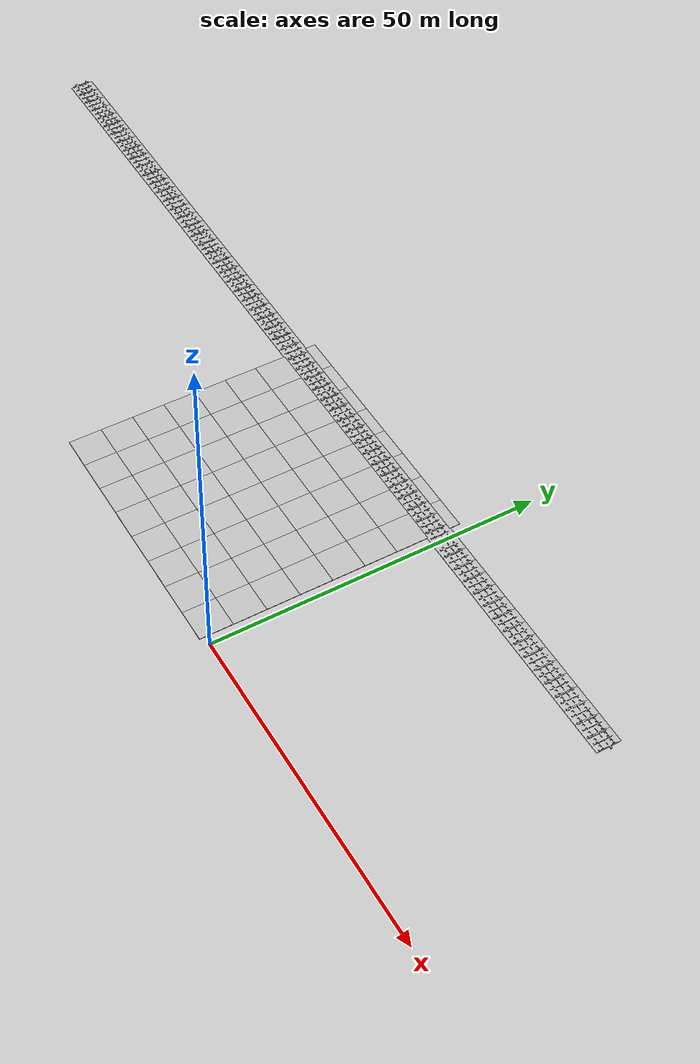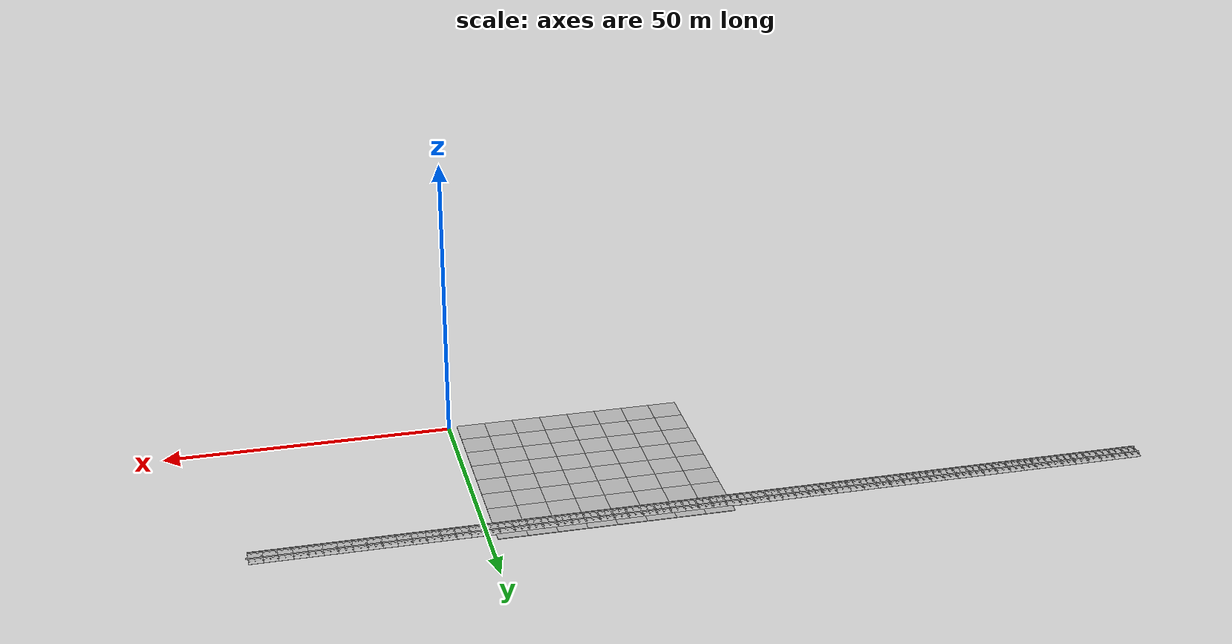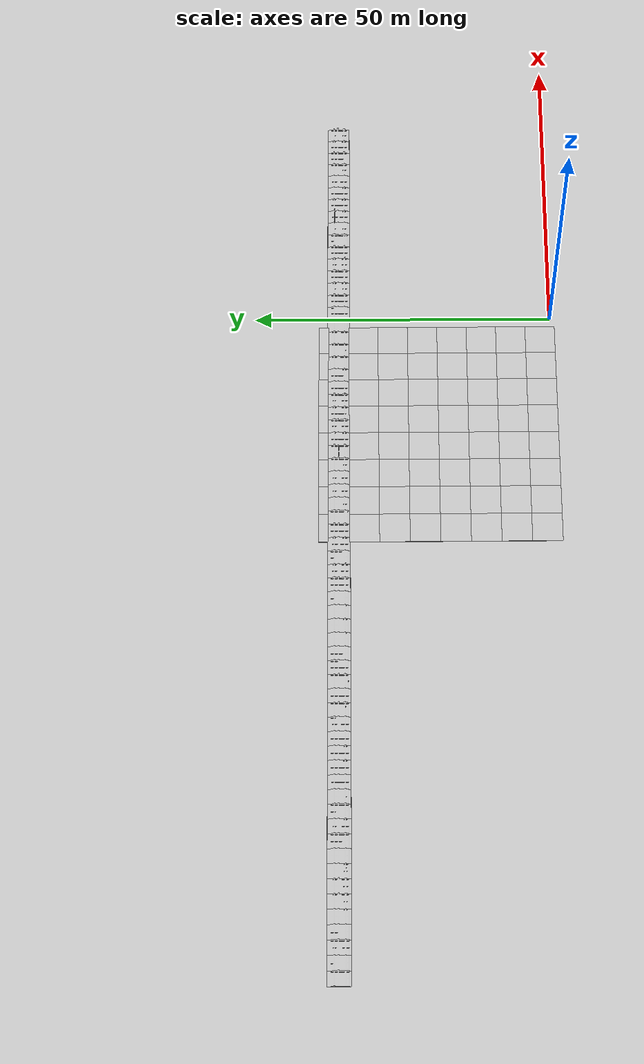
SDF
<sdf version="1.7">
 <world name="default">
  <model name="mud_plane_40x40_0">
   <model name="mud_plane_20x20">
    <model name="mud_plane">
     <static>1</static>
     <link name="link">
      <collision name="collision"><geometry><box><size>10 10 0.1</size></box></geometry></collision>
      <visual name="visual_1">
       <pose>-2.5 2.5 -0.05 0 -0 0</pose>
       <cast_shadows>0</cast_shadows>
       <geometry><box><size>5 5 0.1</size></box></geometry>
       <material>
        <script>
         <uri>model://mud_plane/materials/scripts</uri>
         <uri>model://mud_plane/materials/textures</uri>
         <name>vrc/mud</name>
        </script>
       </material>
      </visual>
      <visual name="visual_2">
       <pose>2.5 2.5 -0.05 0 -0 0</pose>
       <cast_shadows>0</cast_shadows>
       <geometry><box><size>5 5 0.1</size></box></geometry>
       <material>
        <script>
         <uri>model://mud_plane/materials/scripts</uri>
         <uri>model://mud_plane/materials/textures</uri>
         <name>vrc/mud</name>
        </script>
       </material>
      </visual>
      <visual name="visual_3">
       <pose>2.5 -2.5 -0.05 0 -0 0</pose>
       <cast_shadows>0</cast_shadows>
       <geometry><box><size>5 5 0.1</size></box></geometry>
       <material>
        <script>
         <uri>model://mud_plane/materials/scripts</uri>
         <uri>model://mud_plane/materials/textures</uri>
         <name>vrc/mud</name>
        </script>
       </material>
      </visual>
      <visual name="visual_4">
       <pose>-2.5 -2.5 -0.05 0 -0 0</pose>
       <cast_shadows>0</cast_shadows>
       <geometry><box><size>5 5 0.1</size></box></geometry>
       <material>
        <script>
         <uri>model://mud_plane/materials/scripts</uri>
         <uri>model://mud_plane/materials/textures</uri>
         <name>vrc/mud</name>
        </script>
       </material>
      </visual>
     </link>
     <pose>-4.99986 -4.99991 0 0 -0 0</pose>
    </model>
    <model name="mud_plane_0">
     <static>1</static>
     <link name="link">
      <collision name="collision"><geometry><box><size>10 10 0.1</size></box></geometry></collision>
      <visual name="visual_1">
       <pose>-2.5 2.5 -0.05 0 -0 0</pose>
       <cast_shadows>0</cast_shadows>
       <geometry><box><size>5 5 0.1</size></box></geometry>
       <material>
        <script>
         <uri>model://mud_plane/materials/scripts</uri>
         <uri>model://mud_plane/materials/textures</uri>
         <name>vrc/mud</name>
        </script>
       </material>
      </visual>
      <visual name="visual_2">
       <pose>2.5 2.5 -0.05 0 -0 0</pose>
       <cast_shadows>0</cast_shadows>
       <geometry><box><size>5 5 0.1</size></box></geometry>
       <material>
        <script>
         <uri>model://mud_plane/materials/scripts</uri>
         <uri>model://mud_plane/materials/textures</uri>
         <name>vrc/mud</name>
        </script>
       </material>
      </visual>
      <visual name="visual_3">
       <pose>2.5 -2.5 -0.05 0 -0 0</pose>
       <cast_shadows>0</cast_shadows>
       <geometry><box><size>5 5 0.1</size></box></geometry>
       <material>
        <script>
         <uri>model://mud_plane/materials/scripts</uri>
         <uri>model://mud_plane/materials/textures</uri>
         <name>vrc/mud</name>
        </script>
       </material>
      </visual>
      <visual name="visual_4">
       <pose>-2.5 -2.5 -0.05 0 -0 0</pose>
       <cast_shadows>0</cast_shadows>
       <geometry><box><size>5 5 0.1</size></box></geometry>
       <material>
        <script>
         <uri>model://mud_plane/materials/scripts</uri>
         <uri>model://mud_plane/materials/textures</uri>
         <name>vrc/mud</name>
        </script>
       </material>
      </visual>
     </link>
     <pose>-4.99946 4.99954 0 0 -0 0</pose>
    </model>
    <model name="mud_plane_1">
     <static>1</static>
     <link name="link">
      <collision name="collision"><geometry><box><size>10 10 0.1</size></box></geometry></collision>
      <visual name="visual_1">
       <pose>-2.5 2.5 -0.05 0 -0 0</pose>
       <cast_shadows>0</cast_shadows>
       <geometry><box><size>5 5 0.1</size></box></geometry>
       <material>
        <script>
         <uri>model://mud_plane/materials/scripts</uri>
         <uri>model://mud_plane/materials/textures</uri>
         <name>vrc/mud</name>
        </script>
       </material>
      </visual>
      <visual name="visual_2">
       <pose>2.5 2.5 -0.05 0 -0 0</pose>
       <cast_shadows>0</cast_shadows>
       <geometry><box><size>5 5 0.1</size></box></geometry>
       <material>
        <script>
         <uri>model://mud_plane/materials/scripts</uri>
         <uri>model://mud_plane/materials/textures</uri>
         <name>vrc/mud</name>
        </script>
       </material>
      </visual>
      <visual name="visual_3">
       <pose>2.5 -2.5 -0.05 0 -0 0</pose>
       <cast_shadows>0</cast_shadows>
       <geometry><box><size>5 5 0.1</size></box></geometry>
       <material>
        <script>
         <uri>model://mud_plane/materials/scripts</uri>
         <uri>model://mud_plane/materials/textures</uri>
         <name>vrc/mud</name>
        </script>
       </material>
      </visual>
      <visual name="visual_4">
       <pose>-2.5 -2.5 -0.05 0 -0 0</pose>
       <cast_shadows>0</cast_shadows>
       <geometry><box><size>5 5 0.1</size></box></geometry>
       <material>
        <script>
         <uri>model://mud_plane/materials/scripts</uri>
         <uri>model://mud_plane/materials/textures</uri>
         <name>vrc/mud</name>
        </script>
       </material>
      </visual>
     </link>
     <pose>4.99964 -4.99949 0 0 -0 0</pose>
    </model>
    <model name="mud_plane_2">
     <static>1</static>
     <link name="link">
      <collision name="collision"><geometry><box><size>10 10 0.1</size></box></geometry></collision>
      <visual name="visual_1">
       <pose>-2.5 2.5 -0.05 0 -0 0</pose>
       <cast_shadows>0</cast_shadows>
       <geometry><box><size>5 5 0.1</size></box></geometry>
       <material>
        <script>
         <uri>model://mud_plane/materials/scripts</uri>
         <uri>model://mud_plane/materials/textures</uri>
         <name>vrc/mud</name>
        </script>
       </material>
      </visual>
      <visual name="visual_2">
       <pose>2.5 2.5 -0.05 0 -0 0</pose>
       <cast_shadows>0</cast_shadows>
       <geometry><box><size>5 5 0.1</size></box></geometry>
       <material>
        <script>
         <uri>model://mud_plane/materials/scripts</uri>
         <uri>model://mud_plane/materials/textures</uri>
         <name>vrc/mud</name>
        </script>
       </material>
      </visual>
      <visual name="visual_3">
       <pose>2.5 -2.5 -0.05 0 -0 0</pose>
       <cast_shadows>0</cast_shadows>
       <geometry><box><size>5 5 0.1</size></box></geometry>
       <material>
        <script>
         <uri>model://mud_plane/materials/scripts</uri>
         <uri>model://mud_plane/materials/textures</uri>
         <name>vrc/mud</name>
        </script>
       </material>
      </visual>
      <visual name="visual_4">
       <pose>-2.5 -2.5 -0.05 0 -0 0</pose>
       <cast_shadows>0</cast_shadows>
       <geometry><box><size>5 5 0.1</size></box></geometry>
       <material>
        <script>
         <uri>model://mud_plane/materials/scripts</uri>
         <uri>model://mud_plane/materials/textures</uri>
         <name>vrc/mud</name>
        </script>
       </material>
      </visual>
     </link>
     <pose>4.99967 4.99986 0 0 -0 0</pose>
    </model>
    <static>0</static>
    <pose>-9.99895 9.99843 0 0 -0 0</pose>
   </model>
   <model name="mud_plane_20x20_0">
    <model name="mud_plane">
     <static>1</static>
     <link name="link">
      <collision name="collision"><geometry><box><size>10 10 0.1</size></box></geometry></collision>
      <visual name="visual_1">
       <pose>-2.5 2.5 -0.05 0 -0 0</pose>
       <cast_shadows>0</cast_shadows>
       <geometry><box><size>5 5 0.1</size></box></geometry>
       <material>
        <script>
         <uri>model://mud_plane/materials/scripts</uri>
         <uri>model://mud_plane/materials/textures</uri>
         <name>vrc/mud</name>
        </script>
       </material>
      </visual>
      <visual name="visual_2">
       <pose>2.5 2.5 -0.05 0 -0 0</pose>
       <cast_shadows>0</cast_shadows>
       <geometry><box><size>5 5 0.1</size></box></geometry>
       <material>
        <script>
         <uri>model://mud_plane/materials/scripts</uri>
         <uri>model://mud_plane/materials/textures</uri>
         <name>vrc/mud</name>
        </script>
       </material>
      </visual>
      <visual name="visual_3">
       <pose>2.5 -2.5 -0.05 0 -0 0</pose>
       <cast_shadows>0</cast_shadows>
       <geometry><box><size>5 5 0.1</size></box></geometry>
       <material>
        <script>
         <uri>model://mud_plane/materials/scripts</uri>
         <uri>model://mud_plane/materials/textures</uri>
         <name>vrc/mud</name>
        </script>
       </material>
      </visual>
      <visual name="visual_4">
       <pose>-2.5 -2.5 -0.05 0 -0 0</pose>
       <cast_shadows>0</cast_shadows>
       <geometry><box><size>5 5 0.1</size></box></geometry>
       <material>
        <script>
         <uri>model://mud_plane/materials/scripts</uri>
         <uri>model://mud_plane/materials/textures</uri>
         <name>vrc/mud</name>
        </script>
       </material>
      </visual>
     </link>
     <pose>-4.99986 -4.99991 0 0 -0 0</pose>
    </model>
    <model name="mud_plane_0">
     <static>1</static>
     <link name="link">
      <collision name="collision"><geometry><box><size>10 10 0.1</size></box></geometry></collision>
      <visual name="visual_1">
       <pose>-2.5 2.5 -0.05 0 -0 0</pose>
       <cast_shadows>0</cast_shadows>
       <geometry><box><size>5 5 0.1</size></box></geometry>
       <material>
        <script>
         <uri>model://mud_plane/materials/scripts</uri>
         <uri>model://mud_plane/materials/textures</uri>
         <name>vrc/mud</name>
        </script>
       </material>
      </visual>
      <visual name="visual_2">
       <pose>2.5 2.5 -0.05 0 -0 0</pose>
       <cast_shadows>0</cast_shadows>
       <geometry><box><size>5 5 0.1</size></box></geometry>
       <material>
        <script>
         <uri>model://mud_plane/materials/scripts</uri>
         <uri>model://mud_plane/materials/textures</uri>
         <name>vrc/mud</name>
        </script>
       </material>
      </visual>
      <visual name="visual_3">
       <pose>2.5 -2.5 -0.05 0 -0 0</pose>
       <cast_shadows>0</cast_shadows>
       <geometry><box><size>5 5 0.1</size></box></geometry>
       <material>
        <script>
         <uri>model://mud_plane/materials/scripts</uri>
         <uri>model://mud_plane/materials/textures</uri>
         <name>vrc/mud</name>
        </script>
       </material>
      </visual>
      <visual name="visual_4">
       <pose>-2.5 -2.5 -0.05 0 -0 0</pose>
       <cast_shadows>0</cast_shadows>
       <geometry><box><size>5 5 0.1</size></box></geometry>
       <material>
        <script>
         <uri>model://mud_plane/materials/scripts</uri>
         <uri>model://mud_plane/materials/textures</uri>
         <name>vrc/mud</name>
        </script>
       </material>
      </visual>
     </link>
     <pose>-4.99946 4.99954 0 0 -0 0</pose>
    </model>
    <model name="mud_plane_1">
     <static>1</static>
     <link name="link">
      <collision name="collision"><geometry><box><size>10 10 0.1</size></box></geometry></collision>
      <visual name="visual_1">
       <pose>-2.5 2.5 -0.05 0 -0 0</pose>
       <cast_shadows>0</cast_shadows>
       <geometry><box><size>5 5 0.1</size></box></geometry>
       <material>
        <script>
         <uri>model://mud_plane/materials/scripts</uri>
         <uri>model://mud_plane/materials/textures</uri>
         <name>vrc/mud</name>
        </script>
       </material>
      </visual>
      <visual name="visual_2">
       <pose>2.5 2.5 -0.05 0 -0 0</pose>
       <cast_shadows>0</cast_shadows>
       <geometry><box><size>5 5 0.1</size></box></geometry>
       <material>
        <script>
         <uri>model://mud_plane/materials/scripts</uri>
         <uri>model://mud_plane/materials/textures</uri>
         <name>vrc/mud</name>
        </script>
       </material>
      </visual>
      <visual name="visual_3">
       <pose>2.5 -2.5 -0.05 0 -0 0</pose>
       <cast_shadows>0</cast_shadows>
       <geometry><box><size>5 5 0.1</size></box></geometry>
       <material>
        <script>
         <uri>model://mud_plane/materials/scripts</uri>
         <uri>model://mud_plane/materials/textures</uri>
         <name>vrc/mud</name>
        </script>
       </material>
      </visual>
      <visual name="visual_4">
       <pose>-2.5 -2.5 -0.05 0 -0 0</pose>
       <cast_shadows>0</cast_shadows>
       <geometry><box><size>5 5 0.1</size></box></geometry>
       <material>
        <script>
         <uri>model://mud_plane/materials/scripts</uri>
         <uri>model://mud_plane/materials/textures</uri>
         <name>vrc/mud</name>
        </script>
       </material>
      </visual>
     </link>
     <pose>4.99964 -4.99949 0 0 -0 0</pose>
    </model>
    <model name="mud_plane_2">
     <static>1</static>
     <link name="link">
      <collision name="collision"><geometry><box><size>10 10 0.1</size></box></geometry></collision>
      <visual name="visual_1">
       <pose>-2.5 2.5 -0.05 0 -0 0</pose>
       <cast_shadows>0</cast_shadows>
       <geometry><box><size>5 5 0.1</size></box></geometry>
       <material>
        <script>
         <uri>model://mud_plane/materials/scripts</uri>
         <uri>model://mud_plane/materials/textures</uri>
         <name>vrc/mud</name>
        </script>
       </material>
      </visual>
      <visual name="visual_2">
       <pose>2.5 2.5 -0.05 0 -0 0</pose>
       <cast_shadows>0</cast_shadows>
       <geometry><box><size>5 5 0.1</size></box></geometry>
       <material>
        <script>
         <uri>model://mud_plane/materials/scripts</uri>
         <uri>model://mud_plane/materials/textures</uri>
         <name>vrc/mud</name>
        </script>
       </material>
      </visual>
      <visual name="visual_3">
       <pose>2.5 -2.5 -0.05 0 -0 0</pose>
       <cast_shadows>0</cast_shadows>
       <geometry><box><size>5 5 0.1</size></box></geometry>
       <material>
        <script>
         <uri>model://mud_plane/materials/scripts</uri>
         <uri>model://mud_plane/materials/textures</uri>
         <name>vrc/mud</name>
        </script>
       </material>
      </visual>
      <visual name="visual_4">
       <pose>-2.5 -2.5 -0.05 0 -0 0</pose>
       <cast_shadows>0</cast_shadows>
       <geometry><box><size>5 5 0.1</size></box></geometry>
       <material>
        <script>
         <uri>model://mud_plane/materials/scripts</uri>
         <uri>model://mud_plane/materials/textures</uri>
         <name>vrc/mud</name>
        </script>
       </material>
      </visual>
     </link>
     <pose>4.99967 4.99986 0 0 -0 0</pose>
    </model>
    <static>0</static>
    <pose>9.99933 9.9997 0 0 -0 0</pose>
   </model>
   <model name="mud_plane_20x20_1">
    <model name="mud_plane">
     <static>1</static>
     <link name="link">
      <collision name="collision"><geometry><box><size>10 10 0.1</size></box></geometry></collision>
      <visual name="visual_1">
       <pose>-2.5 2.5 -0.05 0 -0 0</pose>
       <cast_shadows>0</cast_shadows>
       <geometry><box><size>5 5 0.1</size></box></geometry>
       <material>
        <script>
         <uri>model://mud_plane/materials/scripts</uri>
         <uri>model://mud_plane/materials/textures</uri>
         <name>vrc/mud</name>
        </script>
       </material>
      </visual>
      <visual name="visual_2">
       <pose>2.5 2.5 -0.05 0 -0 0</pose>
       <cast_shadows>0</cast_shadows>
       <geometry><box><size>5 5 0.1</size></box></geometry>
       <material>
        <script>
         <uri>model://mud_plane/materials/scripts</uri>
         <uri>model://mud_plane/materials/textures</uri>
         <name>vrc/mud</name>
        </script>
       </material>
      </visual>
      <visual name="visual_3">
       <pose>2.5 -2.5 -0.05 0 -0 0</pose>
       <cast_shadows>0</cast_shadows>
       <geometry><box><size>5 5 0.1</size></box></geometry>
       <material>
        <script>
         <uri>model://mud_plane/materials/scripts</uri>
         <uri>model://mud_plane/materials/textures</uri>
         <name>vrc/mud</name>
        </script>
       </material>
      </visual>
      <visual name="visual_4">
       <pose>-2.5 -2.5 -0.05 0 -0 0</pose>
       <cast_shadows>0</cast_shadows>
       <geometry><box><size>5 5 0.1</size></box></geometry>
       <material>
        <script>
         <uri>model://mud_plane/materials/scripts</uri>
         <uri>model://mud_plane/materials/textures</uri>
         <name>vrc/mud</name>
        </script>
       </material>
      </visual>
     </link>
     <pose>-4.99986 -4.99991 0 0 -0 0</pose>
    </model>
    <model name="mud_plane_0">
     <static>1</static>
     <link name="link">
      <collision name="collision"><geometry><box><size>10 10 0.1</size></box></geometry></collision>
      <visual name="visual_1">
       <pose>-2.5 2.5 -0.05 0 -0 0</pose>
       <cast_shadows>0</cast_shadows>
       <geometry><box><size>5 5 0.1</size></box></geometry>
       <material>
        <script>
         <uri>model://mud_plane/materials/scripts</uri>
         <uri>model://mud_plane/materials/textures</uri>
         <name>vrc/mud</name>
        </script>
       </material>
      </visual>
      <visual name="visual_2">
       <pose>2.5 2.5 -0.05 0 -0 0</pose>
       <cast_shadows>0</cast_shadows>
       <geometry><box><size>5 5 0.1</size></box></geometry>
       <material>
        <script>
         <uri>model://mud_plane/materials/scripts</uri>
         <uri>model://mud_plane/materials/textures</uri>
         <name>vrc/mud</name>
        </script>
       </material>
      </visual>
      <visual name="visual_3">
       <pose>2.5 -2.5 -0.05 0 -0 0</pose>
       <cast_shadows>0</cast_shadows>
       <geometry><box><size>5 5 0.1</size></box></geometry>
       <material>
        <script>
         <uri>model://mud_plane/materials/scripts</uri>
         <uri>model://mud_plane/materials/textures</uri>
         <name>vrc/mud</name>
        </script>
       </material>
      </visual>
      <visual name="visual_4">
       <pose>-2.5 -2.5 -0.05 0 -0 0</pose>
       <cast_shadows>0</cast_shadows>
       <geometry><box><size>5 5 0.1</size></box></geometry>
       <material>
        <script>
         <uri>model://mud_plane/materials/scripts</uri>
         <uri>model://mud_plane/materials/textures</uri>
         <name>vrc/mud</name>
        </script>
       </material>
      </visual>
     </link>
     <pose>-4.99946 4.99954 0 0 -0 0</pose>
    </model>
    <model name="mud_plane_1">
     <static>1</static>
     <link name="link">
      <collision name="collision"><geometry><box><size>10 10 0.1</size></box></geometry></collision>
      <visual name="visual_1">
       <pose>-2.5 2.5 -0.05 0 -0 0</pose>
       <cast_shadows>0</cast_shadows>
       <geometry><box><size>5 5 0.1</size></box></geometry>
       <material>
        <script>
         <uri>model://mud_plane/materials/scripts</uri>
         <uri>model://mud_plane/materials/textures</uri>
         <name>vrc/mud</name>
        </script>
       </material>
      </visual>
      <visual name="visual_2">
       <pose>2.5 2.5 -0.05 0 -0 0</pose>
       <cast_shadows>0</cast_shadows>
       <geometry><box><size>5 5 0.1</size></box></geometry>
       <material>
        <script>
         <uri>model://mud_plane/materials/scripts</uri>
         <uri>model://mud_plane/materials/textures</uri>
         <name>vrc/mud</name>
        </script>
       </material>
      </visual>
      <visual name="visual_3">
       <pose>2.5 -2.5 -0.05 0 -0 0</pose>
       <cast_shadows>0</cast_shadows>
       <geometry><box><size>5 5 0.1</size></box></geometry>
       <material>
        <script>
         <uri>model://mud_plane/materials/scripts</uri>
         <uri>model://mud_plane/materials/textures</uri>
         <name>vrc/mud</name>
        </script>
       </material>
      </visual>
      <visual name="visual_4">
       <pose>-2.5 -2.5 -0.05 0 -0 0</pose>
       <cast_shadows>0</cast_shadows>
       <geometry><box><size>5 5 0.1</size></box></geometry>
       <material>
        <script>
         <uri>model://mud_plane/materials/scripts</uri>
         <uri>model://mud_plane/materials/textures</uri>
         <name>vrc/mud</name>
        </script>
       </material>
      </visual>
     </link>
     <pose>4.99964 -4.99949 0 0 -0 0</pose>
    </model>
    <model name="mud_plane_2">
     <static>1</static>
     <link name="link">
      <collision name="collision"><geometry><box><size>10 10 0.1</size></box></geometry></collision>
      <visual name="visual_1">
       <pose>-2.5 2.5 -0.05 0 -0 0</pose>
       <cast_shadows>0</cast_shadows>
       <geometry><box><size>5 5 0.1</size></box></geometry>
       <material>
        <script>
         <uri>model://mud_plane/materials/scripts</uri>
         <uri>model://mud_plane/materials/textures</uri>
         <name>vrc/mud</name>
        </script>
       </material>
      </visual>
      <visual name="visual_2">
       <pose>2.5 2.5 -0.05 0 -0 0</pose>
       <cast_shadows>0</cast_shadows>
       <geometry><box><size>5 5 0.1</size></box></geometry>
       <material>
        <script>
         <uri>model://mud_plane/materials/scripts</uri>
         <uri>model://mud_plane/materials/textures</uri>
         <name>vrc/mud</name>
        </script>
       </material>
      </visual>
      <visual name="visual_3">
       <pose>2.5 -2.5 -0.05 0 -0 0</pose>
       <cast_shadows>0</cast_shadows>
       <geometry><box><size>5 5 0.1</size></box></geometry>
       <material>
        <script>
         <uri>model://mud_plane/materials/scripts</uri>
         <uri>model://mud_plane/materials/textures</uri>
         <name>vrc/mud</name>
        </script>
       </material>
      </visual>
      <visual name="visual_4">
       <pose>-2.5 -2.5 -0.05 0 -0 0</pose>
       <cast_shadows>0</cast_shadows>
       <geometry><box><size>5 5 0.1</size></box></geometry>
       <material>
        <script>
         <uri>model://mud_plane/materials/scripts</uri>
         <uri>model://mud_plane/materials/textures</uri>
         <name>vrc/mud</name>
        </script>
       </material>
      </visual>
     </link>
     <pose>4.99967 4.99986 0 0 -0 0</pose>
    </model>
    <static>0</static>
    <pose>9.9993 -9.99877 0 0 -0 0</pose>
   </model>
   <model name="mud_plane_20x20_2">
    <model name="mud_plane">
     <static>1</static>
     <link name="link">
      <collision name="collision"><geometry><box><size>10 10 0.1</size></box></geometry></collision>
      <visual name="visual_1">
       <pose>-2.5 2.5 -0.05 0 -0 0</pose>
       <cast_shadows>0</cast_shadows>
       <geometry><box><size>5 5 0.1</size></box></geometry>
       <material>
        <script>
         <uri>model://mud_plane/materials/scripts</uri>
         <uri>model://mud_plane/materials/textures</uri>
         <name>vrc/mud</name>
        </script>
       </material>
      </visual>
      <visual name="visual_2">
       <pose>2.5 2.5 -0.05 0 -0 0</pose>
       <cast_shadows>0</cast_shadows>
       <geometry><box><size>5 5 0.1</size></box></geometry>
       <material>
        <script>
         <uri>model://mud_plane/materials/scripts</uri>
         <uri>model://mud_plane/materials/textures</uri>
         <name>vrc/mud</name>
        </script>
       </material>
      </visual>
      <visual name="visual_3">
       <pose>2.5 -2.5 -0.05 0 -0 0</pose>
       <cast_shadows>0</cast_shadows>
       <geometry><box><size>5 5 0.1</size></box></geometry>
       <material>
        <script>
         <uri>model://mud_plane/materials/scripts</uri>
         <uri>model://mud_plane/materials/textures</uri>
         <name>vrc/mud</name>
        </script>
       </material>
      </visual>
      <visual name="visual_4">
       <pose>-2.5 -2.5 -0.05 0 -0 0</pose>
       <cast_shadows>0</cast_shadows>
       <geometry><box><size>5 5 0.1</size></box></geometry>
       <material>
        <script>
         <uri>model://mud_plane/materials/scripts</uri>
         <uri>model://mud_plane/materials/textures</uri>
         <name>vrc/mud</name>
        </script>
       </material>
      </visual>
     </link>
     <pose>-4.99986 -4.99991 0 0 -0 0</pose>
    </model>
    <model name="mud_plane_0">
     <static>1</static>
     <link name="link">
      <collision name="collision"><geometry><box><size>10 10 0.1</size></box></geometry></collision>
      <visual name="visual_1">
       <pose>-2.5 2.5 -0.05 0 -0 0</pose>
       <cast_shadows>0</cast_shadows>
       <geometry><box><size>5 5 0.1</size></box></geometry>
       <material>
        <script>
         <uri>model://mud_plane/materials/scripts</uri>
         <uri>model://mud_plane/materials/textures</uri>
         <name>vrc/mud</name>
        </script>
       </material>
      </visual>
      <visual name="visual_2">
       <pose>2.5 2.5 -0.05 0 -0 0</pose>
       <cast_shadows>0</cast_shadows>
       <geometry><box><size>5 5 0.1</size></box></geometry>
       <material>
        <script>
         <uri>model://mud_plane/materials/scripts</uri>
         <uri>model://mud_plane/materials/textures</uri>
         <name>vrc/mud</name>
        </script>
       </material>
      </visual>
      <visual name="visual_3">
       <pose>2.5 -2.5 -0.05 0 -0 0</pose>
       <cast_shadows>0</cast_shadows>
       <geometry><box><size>5 5 0.1</size></box></geometry>
       <material>
        <script>
         <uri>model://mud_plane/materials/scripts</uri>
         <uri>model://mud_plane/materials/textures</uri>
         <name>vrc/mud</name>
        </script>
       </material>
      </visual>
      <visual name="visual_4">
       <pose>-2.5 -2.5 -0.05 0 -0 0</pose>
       <cast_shadows>0</cast_shadows>
       <geometry><box><size>5 5 0.1</size></box></geometry>
       <material>
        <script>
         <uri>model://mud_plane/materials/scripts</uri>
         <uri>model://mud_plane/materials/textures</uri>
         <name>vrc/mud</name>
        </script>
       </material>
      </visual>
     </link>
     <pose>-4.99946 4.99954 0 0 -0 0</pose>
    </model>
    <model name="mud_plane_1">
     <static>1</static>
     <link name="link">
      <collision name="collision"><geometry><box><size>10 10 0.1</size></box></geometry></collision>
      <visual name="visual_1">
       <pose>-2.5 2.5 -0.05 0 -0 0</pose>
       <cast_shadows>0</cast_shadows>
       <geometry><box><size>5 5 0.1</size></box></geometry>
       <material>
        <script>
         <uri>model://mud_plane/materials/scripts</uri>
         <uri>model://mud_plane/materials/textures</uri>
         <name>vrc/mud</name>
        </script>
       </material>
      </visual>
      <visual name="visual_2">
       <pose>2.5 2.5 -0.05 0 -0 0</pose>
       <cast_shadows>0</cast_shadows>
       <geometry><box><size>5 5 0.1</size></box></geometry>
       <material>
        <script>
         <uri>model://mud_plane/materials/scripts</uri>
         <uri>model://mud_plane/materials/textures</uri>
         <name>vrc/mud</name>
        </script>
       </material>
      </visual>
      <visual name="visual_3">
       <pose>2.5 -2.5 -0.05 0 -0 0</pose>
       <cast_shadows>0</cast_shadows>
       <geometry><box><size>5 5 0.1</size></box></geometry>
       <material>
        <script>
         <uri>model://mud_plane/materials/scripts</uri>
         <uri>model://mud_plane/materials/textures</uri>
         <name>vrc/mud</name>
        </script>
       </material>
      </visual>
      <visual name="visual_4">
       <pose>-2.5 -2.5 -0.05 0 -0 0</pose>
       <cast_shadows>0</cast_shadows>
       <geometry><box><size>5 5 0.1</size></box></geometry>
       <material>
        <script>
         <uri>model://mud_plane/materials/scripts</uri>
         <uri>model://mud_plane/materials/textures</uri>
         <name>vrc/mud</name>
        </script>
       </material>
      </visual>
     </link>
     <pose>4.99964 -4.99949 0 0 -0 0</pose>
    </model>
    <model name="mud_plane_2">
     <static>1</static>
     <link name="link">
      <collision name="collision"><geometry><box><size>10 10 0.1</size></box></geometry></collision>
      <visual name="visual_1">
       <pose>-2.5 2.5 -0.05 0 -0 0</pose>
       <cast_shadows>0</cast_shadows>
       <geometry><box><size>5 5 0.1</size></box></geometry>
       <material>
        <script>
         <uri>model://mud_plane/materials/scripts</uri>
         <uri>model://mud_plane/materials/textures</uri>
         <name>vrc/mud</name>
        </script>
       </material>
      </visual>
      <visual name="visual_2">
       <pose>2.5 2.5 -0.05 0 -0 0</pose>
       <cast_shadows>0</cast_shadows>
       <geometry><box><size>5 5 0.1</size></box></geometry>
       <material>
        <script>
         <uri>model://mud_plane/materials/scripts</uri>
         <uri>model://mud_plane/materials/textures</uri>
         <name>vrc/mud</name>
        </script>
       </material>
      </visual>
      <visual name="visual_3">
       <pose>2.5 -2.5 -0.05 0 -0 0</pose>
       <cast_shadows>0</cast_shadows>
       <geometry><box><size>5 5 0.1</size></box></geometry>
       <material>
        <script>
         <uri>model://mud_plane/materials/scripts</uri>
         <uri>model://mud_plane/materials/textures</uri>
         <name>vrc/mud</name>
        </script>
       </material>
      </visual>
      <visual name="visual_4">
       <pose>-2.5 -2.5 -0.05 0 -0 0</pose>
       <cast_shadows>0</cast_shadows>
       <geometry><box><size>5 5 0.1</size></box></geometry>
       <material>
        <script>
         <uri>model://mud_plane/materials/scripts</uri>
         <uri>model://mud_plane/materials/textures</uri>
         <name>vrc/mud</name>
        </script>
       </material>
      </visual>
     </link>
     <pose>4.99967 4.99986 0 0 -0 0</pose>
    </model>
    <static>0</static>
    <pose>-9.99969 -9.99935 0 0 -0 0</pose>
   </model>
   <static>0</static>
   <pose>-21.4464 19.2559 0 0 -0 0</pose>
  </model>
  <model name="railway64">
   <model name="railway32">
    <model name="railway16">
     <model name="railway8">
      <model name="railway4">
       <model name="railway2">
        <model name="railway">
         <static>1</static>
         <link name="link">
          <visual name="visual"><geometry><mesh><uri>model://railway/meshes/model.dae</uri></mesh></geometry></visual>
         </link>
         <pose>1.19969 -6.9e-05 0 0 -0 0</pose>
        </model>
        <model name="railway_0">
         <static>1</static>
         <link name="link">
          <visual name="visual"><geometry><mesh><uri>model://railway/meshes/model.dae</uri></mesh></geometry></visual>
         </link>
         <pose>-1.1997 6.9e-05 0 0 -0 0</pose>
        </model>
        <static>0</static>
        <pose>-2.39934 4.6e-05 0 0 -0 0</pose>
       </model>
       <model name="railway2_0">
        <model name="railway">
         <static>1</static>
         <link name="link">
          <visual name="visual"><geometry><mesh><uri>model://railway/meshes/model.dae</uri></mesh></geometry></visual>
         </link>
         <pose>1.19969 -6.9e-05 0 0 -0 0</pose>
        </model>
        <model name="railway_0">
         <static>1</static>
         <link name="link">
          <visual name="visual"><geometry><mesh><uri>model://railway/meshes/model.dae</uri></mesh></geometry></visual>
         </link>
         <pose>-1.1997 6.9e-05 0 0 -0 0</pose>
        </model>
        <static>0</static>
        <pose>2.39934 -5.4e-05 0 0 -0 0</pose>
       </model>
       <static>0</static>
       <pose>4.79871 -0.000105 0 0 -0 0</pose>
      </model>
      <model name="railway4_0">
       <model name="railway2">
        <model name="railway">
         <static>1</static>
         <link name="link">
          <visual name="visual"><geometry><mesh><uri>model://railway/meshes/model.dae</uri></mesh></geometry></visual>
         </link>
         <pose>1.19969 -6.9e-05 0 0 -0 0</pose>
        </model>
        <model name="railway_0">
         <static>1</static>
         <link name="link">
          <visual name="visual"><geometry><mesh><uri>model://railway/meshes/model.dae</uri></mesh></geometry></visual>
         </link>
         <pose>-1.1997 6.9e-05 0 0 -0 0</pose>
        </model>
        <static>0</static>
        <pose>-2.39934 4.6e-05 0 0 -0 0</pose>
       </model>
       <model name="railway2_0">
        <model name="railway">
         <static>1</static>
         <link name="link">
          <visual name="visual"><geometry><mesh><uri>model://railway/meshes/model.dae</uri></mesh></geometry></visual>
         </link>
         <pose>1.19969 -6.9e-05 0 0 -0 0</pose>
        </model>
        <model name="railway_0">
         <static>1</static>
         <link name="link">
          <visual name="visual"><geometry><mesh><uri>model://railway/meshes/model.dae</uri></mesh></geometry></visual>
         </link>
         <pose>-1.1997 6.9e-05 0 0 -0 0</pose>
        </model>
        <static>0</static>
        <pose>2.39934 -5.4e-05 0 0 -0 0</pose>
       </model>
       <static>0</static>
       <pose>-4.79871 9.6e-05 0 0 -0 0</pose>
      </model>
      <static>0</static>
      <pose>9.5973 -0.000147 0 0 -0 0</pose>
     </model>
     <model name="railway8_0">
      <model name="railway4">
       <model name="railway2">
        <model name="railway">
         <static>1</static>
         <link name="link">
          <visual name="visual"><geometry><mesh><uri>model://railway/meshes/model.dae</uri></mesh></geometry></visual>
         </link>
         <pose>1.19969 -6.9e-05 0 0 -0 0</pose>
        </model>
        <model name="railway_0">
         <static>1</static>
         <link name="link">
          <visual name="visual"><geometry><mesh><uri>model://railway/meshes/model.dae</uri></mesh></geometry></visual>
         </link>
         <pose>-1.1997 6.9e-05 0 0 -0 0</pose>
        </model>
        <static>0</static>
        <pose>-2.39934 4.6e-05 0 0 -0 0</pose>
       </model>
       <model name="railway2_0">
        <model name="railway">
         <static>1</static>
         <link name="link">
          <visual name="visual"><geometry><mesh><uri>model://railway/meshes/model.dae</uri></mesh></geometry></visual>
         </link>
         <pose>1.19969 -6.9e-05 0 0 -0 0</pose>
        </model>
        <model name="railway_0">
         <static>1</static>
         <link name="link">
          <visual name="visual"><geometry><mesh><uri>model://railway/meshes/model.dae</uri></mesh></geometry></visual>
         </link>
         <pose>-1.1997 6.9e-05 0 0 -0 0</pose>
        </model>
        <static>0</static>
        <pose>2.39934 -5.4e-05 0 0 -0 0</pose>
       </model>
       <static>0</static>
       <pose>4.79871 -0.000105 0 0 -0 0</pose>
      </model>
      <model name="railway4_0">
       <model name="railway2">
        <model name="railway">
         <static>1</static>
         <link name="link">
          <visual name="visual"><geometry><mesh><uri>model://railway/meshes/model.dae</uri></mesh></geometry></visual>
         </link>
         <pose>1.19969 -6.9e-05 0 0 -0 0</pose>
        </model>
        <model name="railway_0">
         <static>1</static>
         <link name="link">
          <visual name="visual"><geometry><mesh><uri>model://railway/meshes/model.dae</uri></mesh></geometry></visual>
         </link>
         <pose>-1.1997 6.9e-05 0 0 -0 0</pose>
        </model>
        <static>0</static>
        <pose>-2.39934 4.6e-05 0 0 -0 0</pose>
       </model>
       <model name="railway2_0">
        <model name="railway">
         <static>1</static>
         <link name="link">
          <visual name="visual"><geometry><mesh><uri>model://railway/meshes/model.dae</uri></mesh></geometry></visual>
         </link>
         <pose>1.19969 -6.9e-05 0 0 -0 0</pose>
        </model>
        <model name="railway_0">
         <static>1</static>
         <link name="link">
          <visual name="visual"><geometry><mesh><uri>model://railway/meshes/model.dae</uri></mesh></geometry></visual>
         </link>
         <pose>-1.1997 6.9e-05 0 0 -0 0</pose>
        </model>
        <static>0</static>
        <pose>2.39934 -5.4e-05 0 0 -0 0</pose>
       </model>
       <static>0</static>
       <pose>-4.79871 9.6e-05 0 0 -0 0</pose>
      </model>
      <static>0</static>
      <pose>-9.59731 0.000145 0 0 -0 0</pose>
     </model>
     <static>0</static>
     <pose>19.1948 -0.00044 0 0 -0 0</pose>
    </model>
    <model name="railway16_0">
     <model name="railway8">
      <model name="railway4">
       <model name="railway2">
        <model name="railway">
         <static>1</static>
         <link name="link">
          <visual name="visual"><geometry><mesh><uri>model://railway/meshes/model.dae</uri></mesh></geometry></visual>
         </link>
         <pose>1.19969 -6.9e-05 0 0 -0 0</pose>
        </model>
        <model name="railway_0">
         <static>1</static>
         <link name="link">
          <visual name="visual"><geometry><mesh><uri>model://railway/meshes/model.dae</uri></mesh></geometry></visual>
         </link>
         <pose>-1.1997 6.9e-05 0 0 -0 0</pose>
        </model>
        <static>0</static>
        <pose>-2.39934 4.6e-05 0 0 -0 0</pose>
       </model>
       <model name="railway2_0">
        <model name="railway">
         <static>1</static>
         <link name="link">
          <visual name="visual"><geometry><mesh><uri>model://railway/meshes/model.dae</uri></mesh></geometry></visual>
         </link>
         <pose>1.19969 -6.9e-05 0 0 -0 0</pose>
        </model>
        <model name="railway_0">
         <static>1</static>
         <link name="link">
          <visual name="visual"><geometry><mesh><uri>model://railway/meshes/model.dae</uri></mesh></geometry></visual>
         </link>
         <pose>-1.1997 6.9e-05 0 0 -0 0</pose>
        </model>
        <static>0</static>
        <pose>2.39934 -5.4e-05 0 0 -0 0</pose>
       </model>
       <static>0</static>
       <pose>4.79871 -0.000105 0 0 -0 0</pose>
      </model>
      <model name="railway4_0">
       <model name="railway2">
        <model name="railway">
         <static>1</static>
         <link name="link">
          <visual name="visual"><geometry><mesh><uri>model://railway/meshes/model.dae</uri></mesh></geometry></visual>
         </link>
         <pose>1.19969 -6.9e-05 0 0 -0 0</pose>
        </model>
        <model name="railway_0">
         <static>1</static>
         <link name="link">
          <visual name="visual"><geometry><mesh><uri>model://railway/meshes/model.dae</uri></mesh></geometry></visual>
         </link>
         <pose>-1.1997 6.9e-05 0 0 -0 0</pose>
        </model>
        <static>0</static>
        <pose>-2.39934 4.6e-05 0 0 -0 0</pose>
       </model>
       <model name="railway2_0">
        <model name="railway">
         <static>1</static>
         <link name="link">
          <visual name="visual"><geometry><mesh><uri>model://railway/meshes/model.dae</uri></mesh></geometry></visual>
         </link>
         <pose>1.19969 -6.9e-05 0 0 -0 0</pose>
        </model>
        <model name="railway_0">
         <static>1</static>
         <link name="link">
          <visual name="visual"><geometry><mesh><uri>model://railway/meshes/model.dae</uri></mesh></geometry></visual>
         </link>
         <pose>-1.1997 6.9e-05 0 0 -0 0</pose>
        </model>
        <static>0</static>
        <pose>2.39934 -5.4e-05 0 0 -0 0</pose>
       </model>
       <static>0</static>
       <pose>-4.79871 9.6e-05 0 0 -0 0</pose>
      </model>
      <static>0</static>
      <pose>9.5973 -0.000147 0 0 -0 0</pose>
     </model>
     <model name="railway8_0">
      <model name="railway4">
       <model name="railway2">
        <model name="railway">
         <static>1</static>
         <link name="link">
          <visual name="visual"><geometry><mesh><uri>model://railway/meshes/model.dae</uri></mesh></geometry></visual>
         </link>
         <pose>1.19969 -6.9e-05 0 0 -0 0</pose>
        </model>
        <model name="railway_0">
         <static>1</static>
         <link name="link">
          <visual name="visual"><geometry><mesh><uri>model://railway/meshes/model.dae</uri></mesh></geometry></visual>
         </link>
         <pose>-1.1997 6.9e-05 0 0 -0 0</pose>
        </model>
        <static>0</static>
        <pose>-2.39934 4.6e-05 0 0 -0 0</pose>
       </model>
       <model name="railway2_0">
        <model name="railway">
         <static>1</static>
         <link name="link">
          <visual name="visual"><geometry><mesh><uri>model://railway/meshes/model.dae</uri></mesh></geometry></visual>
         </link>
         <pose>1.19969 -6.9e-05 0 0 -0 0</pose>
        </model>
        <model name="railway_0">
         <static>1</static>
         <link name="link">
          <visual name="visual"><geometry><mesh><uri>model://railway/meshes/model.dae</uri></mesh></geometry></visual>
         </link>
         <pose>-1.1997 6.9e-05 0 0 -0 0</pose>
        </model>
        <static>0</static>
        <pose>2.39934 -5.4e-05 0 0 -0 0</pose>
       </model>
       <static>0</static>
       <pose>4.79871 -0.000105 0 0 -0 0</pose>
      </model>
      <model name="railway4_0">
       <model name="railway2">
        <model name="railway">
         <static>1</static>
         <link name="link">
          <visual name="visual"><geometry><mesh><uri>model://railway/meshes/model.dae</uri></mesh></geometry></visual>
         </link>
         <pose>1.19969 -6.9e-05 0 0 -0 0</pose>
        </model>
        <model name="railway_0">
         <static>1</static>
         <link name="link">
          <visual name="visual"><geometry><mesh><uri>model://railway/meshes/model.dae</uri></mesh></geometry></visual>
         </link>
         <pose>-1.1997 6.9e-05 0 0 -0 0</pose>
        </model>
        <static>0</static>
        <pose>-2.39934 4.6e-05 0 0 -0 0</pose>
       </model>
       <model name="railway2_0">
        <model name="railway">
         <static>1</static>
         <link name="link">
          <visual name="visual"><geometry><mesh><uri>model://railway/meshes/model.dae</uri></mesh></geometry></visual>
         </link>
         <pose>1.19969 -6.9e-05 0 0 -0 0</pose>
        </model>
        <model name="railway_0">
         <static>1</static>
         <link name="link">
          <visual name="visual"><geometry><mesh><uri>model://railway/meshes/model.dae</uri></mesh></geometry></visual>
         </link>
         <pose>-1.1997 6.9e-05 0 0 -0 0</pose>
        </model>
        <static>0</static>
        <pose>2.39934 -5.4e-05 0 0 -0 0</pose>
       </model>
       <static>0</static>
       <pose>-4.79871 9.6e-05 0 0 -0 0</pose>
      </model>
      <static>0</static>
      <pose>-9.59731 0.000145 0 0 -0 0</pose>
     </model>
     <static>0</static>
     <pose>-19.1948 0.000444 0 0 -0 0</pose>
    </model>
    <static>0</static>
    <pose>38.3896 -0.000844 0 0 -0 0</pose>
   </model>
   <model name="railway32_0">
    <model name="railway16">
     <model name="railway8">
      <model name="railway4">
       <model name="railway2">
        <model name="railway">
         <static>1</static>
         <link name="link">
          <visual name="visual"><geometry><mesh><uri>model://railway/meshes/model.dae</uri></mesh></geometry></visual>
         </link>
         <pose>1.19969 -6.9e-05 0 0 -0 0</pose>
        </model>
        <model name="railway_0">
         <static>1</static>
         <link name="link">
          <visual name="visual"><geometry><mesh><uri>model://railway/meshes/model.dae</uri></mesh></geometry></visual>
         </link>
         <pose>-1.1997 6.9e-05 0 0 -0 0</pose>
        </model>
        <static>0</static>
        <pose>-2.39934 4.6e-05 0 0 -0 0</pose>
       </model>
       <model name="railway2_0">
        <model name="railway">
         <static>1</static>
         <link name="link">
          <visual name="visual"><geometry><mesh><uri>model://railway/meshes/model.dae</uri></mesh></geometry></visual>
         </link>
         <pose>1.19969 -6.9e-05 0 0 -0 0</pose>
        </model>
        <model name="railway_0">
         <static>1</static>
         <link name="link">
          <visual name="visual"><geometry><mesh><uri>model://railway/meshes/model.dae</uri></mesh></geometry></visual>
         </link>
         <pose>-1.1997 6.9e-05 0 0 -0 0</pose>
        </model>
        <static>0</static>
        <pose>2.39934 -5.4e-05 0 0 -0 0</pose>
       </model>
       <static>0</static>
       <pose>4.79871 -0.000105 0 0 -0 0</pose>
      </model>
      <model name="railway4_0">
       <model name="railway2">
        <model name="railway">
         <static>1</static>
         <link name="link">
          <visual name="visual"><geometry><mesh><uri>model://railway/meshes/model.dae</uri></mesh></geometry></visual>
         </link>
         <pose>1.19969 -6.9e-05 0 0 -0 0</pose>
        </model>
        <model name="railway_0">
         <static>1</static>
         <link name="link">
          <visual name="visual"><geometry><mesh><uri>model://railway/meshes/model.dae</uri></mesh></geometry></visual>
         </link>
         <pose>-1.1997 6.9e-05 0 0 -0 0</pose>
        </model>
        <static>0</static>
        <pose>-2.39934 4.6e-05 0 0 -0 0</pose>
       </model>
       <model name="railway2_0">
        <model name="railway">
         <static>1</static>
         <link name="link">
          <visual name="visual"><geometry><mesh><uri>model://railway/meshes/model.dae</uri></mesh></geometry></visual>
         </link>
         <pose>1.19969 -6.9e-05 0 0 -0 0</pose>
        </model>
        <model name="railway_0">
         <static>1</static>
         <link name="link">
          <visual name="visual"><geometry><mesh><uri>model://railway/meshes/model.dae</uri></mesh></geometry></visual>
         </link>
         <pose>-1.1997 6.9e-05 0 0 -0 0</pose>
        </model>
        <static>0</static>
        <pose>2.39934 -5.4e-05 0 0 -0 0</pose>
       </model>
       <static>0</static>
       <pose>-4.79871 9.6e-05 0 0 -0 0</pose>
      </model>
      <static>0</static>
      <pose>9.5973 -0.000147 0 0 -0 0</pose>
     </model>
     <model name="railway8_0">
      <model name="railway4">
       <model name="railway2">
        <model name="railway">
         <static>1</static>
         <link name="link">
          <visual name="visual"><geometry><mesh><uri>model://railway/meshes/model.dae</uri></mesh></geometry></visual>
         </link>
         <pose>1.19969 -6.9e-05 0 0 -0 0</pose>
        </model>
        <model name="railway_0">
         <static>1</static>
         <link name="link">
          <visual name="visual"><geometry><mesh><uri>model://railway/meshes/model.dae</uri></mesh></geometry></visual>
         </link>
         <pose>-1.1997 6.9e-05 0 0 -0 0</pose>
        </model>
        <static>0</static>
        <pose>-2.39934 4.6e-05 0 0 -0 0</pose>
       </model>
       <model name="railway2_0">
        <model name="railway">
         <static>1</static>
         <link name="link">
          <visual name="visual"><geometry><mesh><uri>model://railway/meshes/model.dae</uri></mesh></geometry></visual>
         </link>
         <pose>1.19969 -6.9e-05 0 0 -0 0</pose>
        </model>
        <model name="railway_0">
         <static>1</static>
         <link name="link">
          <visual name="visual"><geometry><mesh><uri>model://railway/meshes/model.dae</uri></mesh></geometry></visual>
         </link>
         <pose>-1.1997 6.9e-05 0 0 -0 0</pose>
        </model>
        <static>0</static>
        <pose>2.39934 -5.4e-05 0 0 -0 0</pose>
       </model>
       <static>0</static>
       <pose>4.79871 -0.000105 0 0 -0 0</pose>
      </model>
      <model name="railway4_0">
       <model name="railway2">
        <model name="railway">
         <static>1</static>
         <link name="link">
          <visual name="visual"><geometry><mesh><uri>model://railway/meshes/model.dae</uri></mesh></geometry></visual>
         </link>
         <pose>1.19969 -6.9e-05 0 0 -0 0</pose>
        </model>
        <model name="railway_0">
         <static>1</static>
         <link name="link">
          <visual name="visual"><geometry><mesh><uri>model://railway/meshes/model.dae</uri></mesh></geometry></visual>
         </link>
         <pose>-1.1997 6.9e-05 0 0 -0 0</pose>
        </model>
        <static>0</static>
        <pose>-2.39934 4.6e-05 0 0 -0 0</pose>
       </model>
       <model name="railway2_0">
        <model name="railway">
         <static>1</static>
         <link name="link">
          <visual name="visual"><geometry><mesh><uri>model://railway/meshes/model.dae</uri></mesh></geometry></visual>
         </link>
         <pose>1.19969 -6.9e-05 0 0 -0 0</pose>
        </model>
        <model name="railway_0">
         <static>1</static>
         <link name="link">
          <visual name="visual"><geometry><mesh><uri>model://railway/meshes/model.dae</uri></mesh></geometry></visual>
         </link>
         <pose>-1.1997 6.9e-05 0 0 -0 0</pose>
        </model>
        <static>0</static>
        <pose>2.39934 -5.4e-05 0 0 -0 0</pose>
       </model>
       <static>0</static>
       <pose>-4.79871 9.6e-05 0 0 -0 0</pose>
      </model>
      <static>0</static>
      <pose>-9.59731 0.000145 0 0 -0 0</pose>
     </model>
     <static>0</static>
     <pose>19.1948 -0.00044 0 0 -0 0</pose>
    </model>
    <model name="railway16_0">
     <model name="railway8">
      <model name="railway4">
       <model name="railway2">
        <model name="railway">
         <static>1</static>
         <link name="link">
          <visual name="visual"><geometry><mesh><uri>model://railway/meshes/model.dae</uri></mesh></geometry></visual>
         </link>
         <pose>1.19969 -6.9e-05 0 0 -0 0</pose>
        </model>
        <model name="railway_0">
         <static>1</static>
         <link name="link">
          <visual name="visual"><geometry><mesh><uri>model://railway/meshes/model.dae</uri></mesh></geometry></visual>
         </link>
         <pose>-1.1997 6.9e-05 0 0 -0 0</pose>
        </model>
        <static>0</static>
        <pose>-2.39934 4.6e-05 0 0 -0 0</pose>
       </model>
       <model name="railway2_0">
        <model name="railway">
         <static>1</static>
         <link name="link">
          <visual name="visual"><geometry><mesh><uri>model://railway/meshes/model.dae</uri></mesh></geometry></visual>
         </link>
         <pose>1.19969 -6.9e-05 0 0 -0 0</pose>
        </model>
        <model name="railway_0">
         <static>1</static>
         <link name="link">
          <visual name="visual"><geometry><mesh><uri>model://railway/meshes/model.dae</uri></mesh></geometry></visual>
         </link>
         <pose>-1.1997 6.9e-05 0 0 -0 0</pose>
        </model>
        <static>0</static>
        <pose>2.39934 -5.4e-05 0 0 -0 0</pose>
       </model>
       <static>0</static>
       <pose>4.79871 -0.000105 0 0 -0 0</pose>
      </model>
      <model name="railway4_0">
       <model name="railway2">
        <model name="railway">
         <static>1</static>
         <link name="link">
          <visual name="visual"><geometry><mesh><uri>model://railway/meshes/model.dae</uri></mesh></geometry></visual>
         </link>
         <pose>1.19969 -6.9e-05 0 0 -0 0</pose>
        </model>
        <model name="railway_0">
         <static>1</static>
         <link name="link">
          <visual name="visual"><geometry><mesh><uri>model://railway/meshes/model.dae</uri></mesh></geometry></visual>
         </link>
         <pose>-1.1997 6.9e-05 0 0 -0 0</pose>
        </model>
        <static>0</static>
        <pose>-2.39934 4.6e-05 0 0 -0 0</pose>
       </model>
       <model name="railway2_0">
        <model name="railway">
         <static>1</static>
         <link name="link">
          <visual name="visual"><geometry><mesh><uri>model://railway/meshes/model.dae</uri></mesh></geometry></visual>
         </link>
         <pose>1.19969 -6.9e-05 0 0 -0 0</pose>
        </model>
        <model name="railway_0">
         <static>1</static>
         <link name="link">
          <visual name="visual"><geometry><mesh><uri>model://railway/meshes/model.dae</uri></mesh></geometry></visual>
         </link>
         <pose>-1.1997 6.9e-05 0 0 -0 0</pose>
        </model>
        <static>0</static>
        <pose>2.39934 -5.4e-05 0 0 -0 0</pose>
       </model>
       <static>0</static>
       <pose>-4.79871 9.6e-05 0 0 -0 0</pose>
      </model>
      <static>0</static>
      <pose>9.5973 -0.000147 0 0 -0 0</pose>
     </model>
     <model name="railway8_0">
      <model name="railway4">
       <model name="railway2">
        <model name="railway">
         <static>1</static>
         <link name="link">
          <visual name="visual"><geometry><mesh><uri>model://railway/meshes/model.dae</uri></mesh></geometry></visual>
         </link>
         <pose>1.19969 -6.9e-05 0 0 -0 0</pose>
        </model>
        <model name="railway_0">
         <static>1</static>
         <link name="link">
          <visual name="visual"><geometry><mesh><uri>model://railway/meshes/model.dae</uri></mesh></geometry></visual>
         </link>
         <pose>-1.1997 6.9e-05 0 0 -0 0</pose>
        </model>
        <static>0</static>
        <pose>-2.39934 4.6e-05 0 0 -0 0</pose>
       </model>
       <model name="railway2_0">
        <model name="railway">
         <static>1</static>
         <link name="link">
          <visual name="visual"><geometry><mesh><uri>model://railway/meshes/model.dae</uri></mesh></geometry></visual>
         </link>
         <pose>1.19969 -6.9e-05 0 0 -0 0</pose>
        </model>
        <model name="railway_0">
         <static>1</static>
         <link name="link">
          <visual name="visual"><geometry><mesh><uri>model://railway/meshes/model.dae</uri></mesh></geometry></visual>
         </link>
         <pose>-1.1997 6.9e-05 0 0 -0 0</pose>
        </model>
        <static>0</static>
        <pose>2.39934 -5.4e-05 0 0 -0 0</pose>
       </model>
       <static>0</static>
       <pose>4.79871 -0.000105 0 0 -0 0</pose>
      </model>
      <model name="railway4_0">
       <model name="railway2">
        <model name="railway">
         <static>1</static>
         <link name="link">
          <visual name="visual"><geometry><mesh><uri>model://railway/meshes/model.dae</uri></mesh></geometry></visual>
         </link>
         <pose>1.19969 -6.9e-05 0 0 -0 0</pose>
        </model>
        <model name="railway_0">
         <static>1</static>
         <link name="link">
          <visual name="visual"><geometry><mesh><uri>model://railway/meshes/model.dae</uri></mesh></geometry></visual>
         </link>
         <pose>-1.1997 6.9e-05 0 0 -0 0</pose>
        </model>
        <static>0</static>
        <pose>-2.39934 4.6e-05 0 0 -0 0</pose>
       </model>
       <model name="railway2_0">
        <model name="railway">
         <static>1</static>
         <link name="link">
          <visual name="visual"><geometry><mesh><uri>model://railway/meshes/model.dae</uri></mesh></geometry></visual>
         </link>
         <pose>1.19969 -6.9e-05 0 0 -0 0</pose>
        </model>
        <model name="railway_0">
         <static>1</static>
         <link name="link">
          <visual name="visual"><geometry><mesh><uri>model://railway/meshes/model.dae</uri></mesh></geometry></visual>
         </link>
         <pose>-1.1997 6.9e-05 0 0 -0 0</pose>
        </model>
        <static>0</static>
        <pose>2.39934 -5.4e-05 0 0 -0 0</pose>
       </model>
       <static>0</static>
       <pose>-4.79871 9.6e-05 0 0 -0 0</pose>
      </model>
      <static>0</static>
      <pose>-9.59731 0.000145 0 0 -0 0</pose>
     </model>
     <static>0</static>
     <pose>-19.1948 0.000444 0 0 -0 0</pose>
    </model>
    <static>0</static>
    <pose>-38.3896 0.000845 0 0 -0 0</pose>
   </model>
   <static>0</static>
   <pose>-39.4454 35.8966 0 0 -0 0</pose>
  </model>
 </world>
</sdf>
